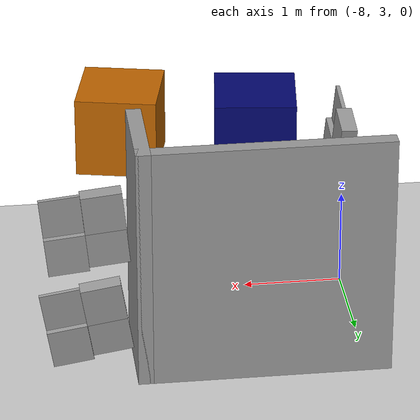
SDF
<sdf version="1.7">
 <world name="default">
  <model name="demo_clean">
   <static>1</static>
   <link name="Wall_6">
    <collision name="Wall_6_Collision">
     <geometry><box><size>2.5 0.15 2.5</size></box></geometry>
     <pose>0 0 1.25 0 -0 0</pose>
     <surface>
      <friction>
       <ode><mu>1</mu><mu2>1</mu2><fdir1>0 0 0</fdir1><slip1>0</slip1><slip2>0</slip2></ode>
       <torsional>
        <coefficient>1</coefficient>
        <patch_radius>0</patch_radius>
        <surface_radius>0</surface_radius>
        <use_patch_radius>1</use_patch_radius>
        <ode><slip>0</slip></ode>
       </torsional>
      </friction>
      <bounce><restitution_coefficient>0</restitution_coefficient><threshold>1e+06</threshold></bounce>
      <contact>
       <collide_without_contact>0</collide_without_contact>
       <collide_without_contact_bitmask>1</collide_without_contact_bitmask>
       <collide_bitmask>1</collide_bitmask>
       <ode>
        <soft_cfm>0</soft_cfm>
        <soft_erp>0.2</soft_erp>
        <kp>1e+13</kp>
        <kd>1</kd>
        <max_vel>0.01</max_vel>
        <min_depth>0</min_depth>
       </ode>
       <bullet>
        <split_impulse>1</split_impulse>
        <split_impulse_penetration_threshold>-0.01</split_impulse_penetration_threshold>
        <soft_cfm>0</soft_cfm>
        <soft_erp>0.2</soft_erp>
        <kp>1e+13</kp>
        <kd>1</kd>
       </bullet>
      </contact>
     </surface>
    </collision>
    <visual name="Wall_6_Visual">
     <geometry><box><size>2.5 0.15 2.5</size></box></geometry>
     <material>
      <script><name>Gazebo/Grey</name><uri>file://media/materials/scripts/gazebo.material</uri></script>
      <ambient>1 1 1 1</ambient>
      <shader type="pixel"><normal_map>default</normal_map></shader>
     </material>
     <pose>0 0 1.25 0 -0 0</pose>
    </visual>
    <pose>-6.97149 4.74118 0 0 -0 0</pose>
   </link>
   <link name="Wall_7">
    <collision name="Wall_7_Collision">
     <geometry><box><size>1 0.15 2.5</size></box></geometry>
     <pose>0 0 1.25 0 -0 0</pose>
     <surface>
      <friction>
       <ode><mu>1</mu><mu2>1</mu2><fdir1>0 0 0</fdir1><slip1>0</slip1><slip2>0</slip2></ode>
       <torsional>
        <coefficient>1</coefficient>
        <patch_radius>0</patch_radius>
        <surface_radius>0</surface_radius>
        <use_patch_radius>1</use_patch_radius>
        <ode><slip>0</slip></ode>
       </torsional>
      </friction>
      <bounce><restitution_coefficient>0</restitution_coefficient><threshold>1e+06</threshold></bounce>
      <contact>
       <collide_without_contact>0</collide_without_contact>
       <collide_without_contact_bitmask>1</collide_without_contact_bitmask>
       <collide_bitmask>1</collide_bitmask>
       <ode>
        <soft_cfm>0</soft_cfm>
        <soft_erp>0.2</soft_erp>
        <kp>1e+13</kp>
        <kd>1</kd>
        <max_vel>0.01</max_vel>
        <min_depth>0</min_depth>
       </ode>
       <bullet>
        <split_impulse>1</split_impulse>
        <split_impulse_penetration_threshold>-0.01</split_impulse_penetration_threshold>
        <soft_cfm>0</soft_cfm>
        <soft_erp>0.2</soft_erp>
        <kp>1e+13</kp>
        <kd>1</kd>
       </bullet>
      </contact>
     </surface>
    </collision>
    <visual name="Wall_7_Visual">
     <geometry><box><size>1 0.15 2.5</size></box></geometry>
     <material>
      <script><name>Gazebo/Grey</name><uri>file://media/materials/scripts/gazebo.material</uri></script>
      <ambient>1 1 1 1</ambient>
      <shader type="pixel"><normal_map>default</normal_map></shader>
     </material>
     <pose>0 0 1.25 0 -0 0</pose>
    </visual>
    <pose>-5.79649 4.31618 0 0 0 -1.5708</pose>
   </link>
  </model>
  <model name="dyn_box_4">
   <pose>-7.05039 3.33487 2 0 -0 3.02665</pose>
   <static>1</static>
   <allow_auto_disable>0</allow_auto_disable>
   <link name="link">
    <collision name="collision">
     <geometry><box><size>0.8 0.8 0.8</size></box></geometry>
     <max_contacts>20</max_contacts>
    </collision>
    <visual name="visual">
     <geometry><box><size>0.8 0.8 0.8</size></box></geometry>
     <material>
      <ambient>0.00784314 0.0235294 0.435294 1</ambient>
      <diffuse>0.00784314 0.0235294 0.435294 1</diffuse>
     </material>
    </visual>
   </link>
  </model>
  <model name="dyn_box_7">
   <pose>-5.73642 3.07449 2 0 -0 2.92783</pose>
   <static>1</static>
   <allow_auto_disable>0</allow_auto_disable>
   <link name="link">
    <collision name="collision">
     <geometry><box><size>0.8 0.8 0.8</size></box></geometry>
     <max_contacts>20</max_contacts>
    </collision>
    <visual name="visual">
     <geometry><box><size>0.8 0.8 0.8</size></box></geometry>
     <material><ambient>0.745098 0.392157 0 1</ambient><diffuse>0.745098 0.392157 0 1</diffuse></material>
    </visual>
   </link>
  </model>
  <model name="ground_plane">
   <static>1</static>
   <link name="link">
    <collision name="collision">
     <geometry><plane><normal>0 0 1</normal><size>100 100</size></plane></geometry>
     <surface>
      <contact><collide_bitmask>65535</collide_bitmask></contact>
      <friction><ode><mu>100</mu><mu2>50</mu2></ode></friction>
     </surface>
    </collision>
    <visual name="visual">
     <cast_shadows>0</cast_shadows>
     <geometry><plane><normal>0 0 1</normal><size>100 100</size></plane></geometry>
     <material>
      <script><uri>file://media/materials/scripts/gazebo.material</uri><name>Gazebo/Grey</name></script>
     </material>
    </visual>
   </link>
  </model>
  <model name="wall_slate_22">
   <static>1</static>
   <link name="link_0">
    <inertial><mass>1</mass></inertial>
    <gravity>0</gravity>
    <visual name="visual">
     <pose>0 0.2 0.2 0 -0 0</pose>
     <geometry><box><size>0.16 0.4 0.4</size></box></geometry>
     <material>
      <lighting>1</lighting>
      <script><uri>file://media/materials/scripts/gazebo.material</uri><name>Gazebo/Grey</name></script>
      <shader type="pixel"><normal_map>__default__</normal_map></shader>
      <ambient>0.3 0.3 0.3 1</ambient>
      <diffuse>0.7 0.7 0.7 1</diffuse>
      <specular>0.01 0.01 0.01 1</specular>
      <emissive>0 0 0 1</emissive>
     </material>
    </visual>
    <visual name="ModelPreview_0::link_0::visual_1">
     <pose>0 0.2 -0.2 0 -0 0</pose>
     <geometry><box><size>0.04 0.4 0.4</size></box></geometry>
     <material>
      <lighting>1</lighting>
      <script><uri>file://media/materials/scripts/gazebo.material</uri><name>Gazebo/Grey</name></script>
      <shader type="pixel"><normal_map>__default__</normal_map></shader>
      <ambient>0.3 0.3 0.3 1</ambient>
      <diffuse>0.7 0.7 0.7 1</diffuse>
      <specular>0.01 0.01 0.01 1</specular>
      <emissive>0 0 0 1</emissive>
     </material>
    </visual>
    <visual name="ModelPreview_0::link_0::visual_2">
     <pose>0 -0.2 0.2 0 -0 0</pose>
     <geometry><box><size>0.04 0.4 0.4</size></box></geometry>
     <material>
      <lighting>1</lighting>
      <script><uri>file://media/materials/scripts/gazebo.material</uri><name>Gazebo/Grey</name></script>
      <shader type="pixel"><normal_map>__default__</normal_map></shader>
      <ambient>0.3 0.3 0.3 1</ambient>
      <diffuse>0.7 0.7 0.7 1</diffuse>
      <specular>0.01 0.01 0.01 1</specular>
      <emissive>0 0 0 1</emissive>
     </material>
    </visual>
    <visual name="ModelPreview_0::link_0::visual_3">
     <pose>0 -0.2 -0.2 0 -0 0</pose>
     <geometry><box><size>0.16 0.4 0.4</size></box></geometry>
     <material>
      <lighting>1</lighting>
      <script><uri>file://media/materials/scripts/gazebo.material</uri><name>Gazebo/Grey</name></script>
      <shader type="pixel"><normal_map>__default__</normal_map></shader>
      <ambient>0.3 0.3 0.3 1</ambient>
      <diffuse>0.7 0.7 0.7 1</diffuse>
      <specular>0.01 0.01 0.01 1</specular>
      <emissive>0 0 0 1</emissive>
     </material>
    </visual>
    <collision name="collision_2">
     <pose>0 -0.2 0.2 0 -0 0</pose>
     <geometry><box><size>0.04 0.4 0.4</size></box></geometry>
     <surface>
      <friction>
       <ode><mu>1</mu><mu2>1</mu2><fdir1>0 0 0</fdir1><slip1>0</slip1><slip2>0</slip2></ode>
       <torsional>
        <coefficient>1</coefficient>
        <patch_radius>0</patch_radius>
        <surface_radius>0</surface_radius>
        <use_patch_radius>1</use_patch_radius>
        <ode><slip>0</slip></ode>
       </torsional>
      </friction>
      <bounce><restitution_coefficient>0</restitution_coefficient><threshold>1e+06</threshold></bounce>
      <contact>
       <collide_without_contact>0</collide_without_contact>
       <collide_without_contact_bitmask>1</collide_without_contact_bitmask>
       <collide_bitmask>1</collide_bitmask>
       <ode>
        <soft_cfm>0</soft_cfm>
        <soft_erp>0.2</soft_erp>
        <kp>1e+13</kp>
        <kd>1</kd>
        <max_vel>0.01</max_vel>
        <min_depth>0</min_depth>
       </ode>
       <bullet>
        <split_impulse>1</split_impulse>
        <split_impulse_penetration_threshold>-0.01</split_impulse_penetration_threshold>
        <soft_cfm>0</soft_cfm>
        <soft_erp>0.2</soft_erp>
        <kp>1e+13</kp>
        <kd>1</kd>
       </bullet>
      </contact>
     </surface>
    </collision>
    <collision name="collision_1">
     <pose>0 0.2 -0.2 0 -0 0</pose>
     <geometry><box><size>0.04 0.4 0.4</size></box></geometry>
     <surface>
      <friction>
       <ode><mu>1</mu><mu2>1</mu2><fdir1>0 0 0</fdir1><slip1>0</slip1><slip2>0</slip2></ode>
       <torsional>
        <coefficient>1</coefficient>
        <patch_radius>0</patch_radius>
        <surface_radius>0</surface_radius>
        <use_patch_radius>1</use_patch_radius>
        <ode><slip>0</slip></ode>
       </torsional>
      </friction>
      <bounce><restitution_coefficient>0</restitution_coefficient><threshold>1e+06</threshold></bounce>
      <contact>
       <collide_without_contact>0</collide_without_contact>
       <collide_without_contact_bitmask>1</collide_without_contact_bitmask>
       <collide_bitmask>1</collide_bitmask>
       <ode>
        <soft_cfm>0</soft_cfm>
        <soft_erp>0.2</soft_erp>
        <kp>1e+13</kp>
        <kd>1</kd>
        <max_vel>0.01</max_vel>
        <min_depth>0</min_depth>
       </ode>
       <bullet>
        <split_impulse>1</split_impulse>
        <split_impulse_penetration_threshold>-0.01</split_impulse_penetration_threshold>
        <soft_cfm>0</soft_cfm>
        <soft_erp>0.2</soft_erp>
        <kp>1e+13</kp>
        <kd>1</kd>
       </bullet>
      </contact>
     </surface>
    </collision>
    <collision name="collision_4">
     <pose>0 0.2 0.2 0 -0 0</pose>
     <geometry><box><size>0.16 0.4 0.4</size></box></geometry>
     <surface>
      <friction>
       <ode><mu>1</mu><mu2>1</mu2><fdir1>0 0 0</fdir1><slip1>0</slip1><slip2>0</slip2></ode>
       <torsional>
        <coefficient>1</coefficient>
        <patch_radius>0</patch_radius>
        <surface_radius>0</surface_radius>
        <use_patch_radius>1</use_patch_radius>
        <ode><slip>0</slip></ode>
       </torsional>
      </friction>
      <bounce><restitution_coefficient>0</restitution_coefficient><threshold>1e+06</threshold></bounce>
      <contact>
       <collide_without_contact>0</collide_without_contact>
       <collide_without_contact_bitmask>1</collide_without_contact_bitmask>
       <collide_bitmask>1</collide_bitmask>
       <ode>
        <soft_cfm>0</soft_cfm>
        <soft_erp>0.2</soft_erp>
        <kp>1e+13</kp>
        <kd>1</kd>
        <max_vel>0.01</max_vel>
        <min_depth>0</min_depth>
       </ode>
       <bullet>
        <split_impulse>1</split_impulse>
        <split_impulse_penetration_threshold>-0.01</split_impulse_penetration_threshold>
        <soft_cfm>0</soft_cfm>
        <soft_erp>0.2</soft_erp>
        <kp>1e+13</kp>
        <kd>1</kd>
       </bullet>
      </contact>
     </surface>
    </collision>
    <collision name="collision_3">
     <pose>0 -0.2 -0.2 0 -0 0</pose>
     <geometry><box><size>0.16 0.4 0.4</size></box></geometry>
     <surface>
      <friction>
       <ode><mu>1</mu><mu2>1</mu2><fdir1>0 0 0</fdir1><slip1>0</slip1><slip2>0</slip2></ode>
       <torsional>
        <coefficient>1</coefficient>
        <patch_radius>0</patch_radius>
        <surface_radius>0</surface_radius>
        <use_patch_radius>1</use_patch_radius>
        <ode><slip>0</slip></ode>
       </torsional>
      </friction>
      <bounce><restitution_coefficient>0</restitution_coefficient><threshold>1e+06</threshold></bounce>
      <contact>
       <collide_without_contact>0</collide_without_contact>
       <collide_without_contact_bitmask>1</collide_without_contact_bitmask>
       <collide_bitmask>1</collide_bitmask>
       <ode>
        <soft_cfm>0</soft_cfm>
        <soft_erp>0.2</soft_erp>
        <kp>1e+13</kp>
        <kd>1</kd>
        <max_vel>0.01</max_vel>
        <min_depth>0</min_depth>
       </ode>
       <bullet>
        <split_impulse>1</split_impulse>
        <split_impulse_penetration_threshold>-0.01</split_impulse_penetration_threshold>
        <soft_cfm>0</soft_cfm>
        <soft_erp>0.2</soft_erp>
        <kp>1e+13</kp>
        <kd>1</kd>
       </bullet>
      </contact>
     </surface>
    </collision>
   </link>
   <pose>-7.57149 4.56618 1.6 -0.16 0.08 1.5757</pose>
  </model>
  <model name="wall_slate_28">
   <static>1</static>
   <link name="link_0">
    <inertial><mass>1</mass></inertial>
    <gravity>0</gravity>
    <visual name="visual">
     <pose>0 0.2 0.2 0 -0 0</pose>
     <geometry><box><size>0.16 0.4 0.4</size></box></geometry>
     <material>
      <lighting>1</lighting>
      <script><uri>file://media/materials/scripts/gazebo.material</uri><name>Gazebo/Grey</name></script>
      <shader type="pixel"><normal_map>__default__</normal_map></shader>
      <ambient>0.3 0.3 0.3 1</ambient>
      <diffuse>0.7 0.7 0.7 1</diffuse>
      <specular>0.01 0.01 0.01 1</specular>
      <emissive>0 0 0 1</emissive>
     </material>
    </visual>
    <visual name="ModelPreview_0::link_0::visual_1">
     <pose>0 0.2 -0.2 0 -0 0</pose>
     <geometry><box><size>0.04 0.4 0.4</size></box></geometry>
     <material>
      <lighting>1</lighting>
      <script><uri>file://media/materials/scripts/gazebo.material</uri><name>Gazebo/Grey</name></script>
      <shader type="pixel"><normal_map>__default__</normal_map></shader>
      <ambient>0.3 0.3 0.3 1</ambient>
      <diffuse>0.7 0.7 0.7 1</diffuse>
      <specular>0.01 0.01 0.01 1</specular>
      <emissive>0 0 0 1</emissive>
     </material>
    </visual>
    <visual name="ModelPreview_0::link_0::visual_2">
     <pose>0 -0.2 0.2 0 -0 0</pose>
     <geometry><box><size>0.04 0.4 0.4</size></box></geometry>
     <material>
      <lighting>1</lighting>
      <script><uri>file://media/materials/scripts/gazebo.material</uri><name>Gazebo/Grey</name></script>
      <shader type="pixel"><normal_map>__default__</normal_map></shader>
      <ambient>0.3 0.3 0.3 1</ambient>
      <diffuse>0.7 0.7 0.7 1</diffuse>
      <specular>0.01 0.01 0.01 1</specular>
      <emissive>0 0 0 1</emissive>
     </material>
    </visual>
    <visual name="ModelPreview_0::link_0::visual_3">
     <pose>0 -0.2 -0.2 0 -0 0</pose>
     <geometry><box><size>0.16 0.4 0.4</size></box></geometry>
     <material>
      <lighting>1</lighting>
      <script><uri>file://media/materials/scripts/gazebo.material</uri><name>Gazebo/Grey</name></script>
      <shader type="pixel"><normal_map>__default__</normal_map></shader>
      <ambient>0.3 0.3 0.3 1</ambient>
      <diffuse>0.7 0.7 0.7 1</diffuse>
      <specular>0.01 0.01 0.01 1</specular>
      <emissive>0 0 0 1</emissive>
     </material>
    </visual>
    <collision name="collision_2">
     <pose>0 -0.2 0.2 0 -0 0</pose>
     <geometry><box><size>0.04 0.4 0.4</size></box></geometry>
     <surface>
      <friction>
       <ode><mu>1</mu><mu2>1</mu2><fdir1>0 0 0</fdir1><slip1>0</slip1><slip2>0</slip2></ode>
       <torsional>
        <coefficient>1</coefficient>
        <patch_radius>0</patch_radius>
        <surface_radius>0</surface_radius>
        <use_patch_radius>1</use_patch_radius>
        <ode><slip>0</slip></ode>
       </torsional>
      </friction>
      <bounce><restitution_coefficient>0</restitution_coefficient><threshold>1e+06</threshold></bounce>
      <contact>
       <collide_without_contact>0</collide_without_contact>
       <collide_without_contact_bitmask>1</collide_without_contact_bitmask>
       <collide_bitmask>1</collide_bitmask>
       <ode>
        <soft_cfm>0</soft_cfm>
        <soft_erp>0.2</soft_erp>
        <kp>1e+13</kp>
        <kd>1</kd>
        <max_vel>0.01</max_vel>
        <min_depth>0</min_depth>
       </ode>
       <bullet>
        <split_impulse>1</split_impulse>
        <split_impulse_penetration_threshold>-0.01</split_impulse_penetration_threshold>
        <soft_cfm>0</soft_cfm>
        <soft_erp>0.2</soft_erp>
        <kp>1e+13</kp>
        <kd>1</kd>
       </bullet>
      </contact>
     </surface>
    </collision>
    <collision name="collision_1">
     <pose>0 0.2 -0.2 0 -0 0</pose>
     <geometry><box><size>0.04 0.4 0.4</size></box></geometry>
     <surface>
      <friction>
       <ode><mu>1</mu><mu2>1</mu2><fdir1>0 0 0</fdir1><slip1>0</slip1><slip2>0</slip2></ode>
       <torsional>
        <coefficient>1</coefficient>
        <patch_radius>0</patch_radius>
        <surface_radius>0</surface_radius>
        <use_patch_radius>1</use_patch_radius>
        <ode><slip>0</slip></ode>
       </torsional>
      </friction>
      <bounce><restitution_coefficient>0</restitution_coefficient><threshold>1e+06</threshold></bounce>
      <contact>
       <collide_without_contact>0</collide_without_contact>
       <collide_without_contact_bitmask>1</collide_without_contact_bitmask>
       <collide_bitmask>1</collide_bitmask>
       <ode>
        <soft_cfm>0</soft_cfm>
        <soft_erp>0.2</soft_erp>
        <kp>1e+13</kp>
        <kd>1</kd>
        <max_vel>0.01</max_vel>
        <min_depth>0</min_depth>
       </ode>
       <bullet>
        <split_impulse>1</split_impulse>
        <split_impulse_penetration_threshold>-0.01</split_impulse_penetration_threshold>
        <soft_cfm>0</soft_cfm>
        <soft_erp>0.2</soft_erp>
        <kp>1e+13</kp>
        <kd>1</kd>
       </bullet>
      </contact>
     </surface>
    </collision>
    <collision name="collision_4">
     <pose>0 0.2 0.2 0 -0 0</pose>
     <geometry><box><size>0.16 0.4 0.4</size></box></geometry>
     <surface>
      <friction>
       <ode><mu>1</mu><mu2>1</mu2><fdir1>0 0 0</fdir1><slip1>0</slip1><slip2>0</slip2></ode>
       <torsional>
        <coefficient>1</coefficient>
        <patch_radius>0</patch_radius>
        <surface_radius>0</surface_radius>
        <use_patch_radius>1</use_patch_radius>
        <ode><slip>0</slip></ode>
       </torsional>
      </friction>
      <bounce><restitution_coefficient>0</restitution_coefficient><threshold>1e+06</threshold></bounce>
      <contact>
       <collide_without_contact>0</collide_without_contact>
       <collide_without_contact_bitmask>1</collide_without_contact_bitmask>
       <collide_bitmask>1</collide_bitmask>
       <ode>
        <soft_cfm>0</soft_cfm>
        <soft_erp>0.2</soft_erp>
        <kp>1e+13</kp>
        <kd>1</kd>
        <max_vel>0.01</max_vel>
        <min_depth>0</min_depth>
       </ode>
       <bullet>
        <split_impulse>1</split_impulse>
        <split_impulse_penetration_threshold>-0.01</split_impulse_penetration_threshold>
        <soft_cfm>0</soft_cfm>
        <soft_erp>0.2</soft_erp>
        <kp>1e+13</kp>
        <kd>1</kd>
       </bullet>
      </contact>
     </surface>
    </collision>
    <collision name="collision_3">
     <pose>0 -0.2 -0.2 0 -0 0</pose>
     <geometry><box><size>0.16 0.4 0.4</size></box></geometry>
     <surface>
      <friction>
       <ode><mu>1</mu><mu2>1</mu2><fdir1>0 0 0</fdir1><slip1>0</slip1><slip2>0</slip2></ode>
       <torsional>
        <coefficient>1</coefficient>
        <patch_radius>0</patch_radius>
        <surface_radius>0</surface_radius>
        <use_patch_radius>1</use_patch_radius>
        <ode><slip>0</slip></ode>
       </torsional>
      </friction>
      <bounce><restitution_coefficient>0</restitution_coefficient><threshold>1e+06</threshold></bounce>
      <contact>
       <collide_without_contact>0</collide_without_contact>
       <collide_without_contact_bitmask>1</collide_without_contact_bitmask>
       <collide_bitmask>1</collide_bitmask>
       <ode>
        <soft_cfm>0</soft_cfm>
        <soft_erp>0.2</soft_erp>
        <kp>1e+13</kp>
        <kd>1</kd>
        <max_vel>0.01</max_vel>
        <min_depth>0</min_depth>
       </ode>
       <bullet>
        <split_impulse>1</split_impulse>
        <split_impulse_penetration_threshold>-0.01</split_impulse_penetration_threshold>
        <soft_cfm>0</soft_cfm>
        <soft_erp>0.2</soft_erp>
        <kp>1e+13</kp>
        <kd>1</kd>
       </bullet>
      </contact>
     </surface>
    </collision>
   </link>
   <pose>-5.24649 4.56618 0.6 0.16 0.08 1.5757</pose>
  </model>
  <model name="wall_slate_31">
   <static>1</static>
   <link name="link_0">
    <inertial><mass>1</mass></inertial>
    <gravity>0</gravity>
    <visual name="visual">
     <pose>0 0.2 0.2 0 -0 0</pose>
     <geometry><box><size>0.16 0.4 0.4</size></box></geometry>
     <material>
      <lighting>1</lighting>
      <script><uri>file://media/materials/scripts/gazebo.material</uri><name>Gazebo/Grey</name></script>
      <shader type="pixel"><normal_map>__default__</normal_map></shader>
      <ambient>0.3 0.3 0.3 1</ambient>
      <diffuse>0.7 0.7 0.7 1</diffuse>
      <specular>0.01 0.01 0.01 1</specular>
      <emissive>0 0 0 1</emissive>
     </material>
    </visual>
    <visual name="ModelPreview_0::link_0::visual_1">
     <pose>0 0.2 -0.2 0 -0 0</pose>
     <geometry><box><size>0.04 0.4 0.4</size></box></geometry>
     <material>
      <lighting>1</lighting>
      <script><uri>file://media/materials/scripts/gazebo.material</uri><name>Gazebo/Grey</name></script>
      <shader type="pixel"><normal_map>__default__</normal_map></shader>
      <ambient>0.3 0.3 0.3 1</ambient>
      <diffuse>0.7 0.7 0.7 1</diffuse>
      <specular>0.01 0.01 0.01 1</specular>
      <emissive>0 0 0 1</emissive>
     </material>
    </visual>
    <visual name="ModelPreview_0::link_0::visual_2">
     <pose>0 -0.2 0.2 0 -0 0</pose>
     <geometry><box><size>0.04 0.4 0.4</size></box></geometry>
     <material>
      <lighting>1</lighting>
      <script><uri>file://media/materials/scripts/gazebo.material</uri><name>Gazebo/Grey</name></script>
      <shader type="pixel"><normal_map>__default__</normal_map></shader>
      <ambient>0.3 0.3 0.3 1</ambient>
      <diffuse>0.7 0.7 0.7 1</diffuse>
      <specular>0.01 0.01 0.01 1</specular>
      <emissive>0 0 0 1</emissive>
     </material>
    </visual>
    <visual name="ModelPreview_0::link_0::visual_3">
     <pose>0 -0.2 -0.2 0 -0 0</pose>
     <geometry><box><size>0.16 0.4 0.4</size></box></geometry>
     <material>
      <lighting>1</lighting>
      <script><uri>file://media/materials/scripts/gazebo.material</uri><name>Gazebo/Grey</name></script>
      <shader type="pixel"><normal_map>__default__</normal_map></shader>
      <ambient>0.3 0.3 0.3 1</ambient>
      <diffuse>0.7 0.7 0.7 1</diffuse>
      <specular>0.01 0.01 0.01 1</specular>
      <emissive>0 0 0 1</emissive>
     </material>
    </visual>
    <collision name="collision_2">
     <pose>0 -0.2 0.2 0 -0 0</pose>
     <geometry><box><size>0.04 0.4 0.4</size></box></geometry>
     <surface>
      <friction>
       <ode><mu>1</mu><mu2>1</mu2><fdir1>0 0 0</fdir1><slip1>0</slip1><slip2>0</slip2></ode>
       <torsional>
        <coefficient>1</coefficient>
        <patch_radius>0</patch_radius>
        <surface_radius>0</surface_radius>
        <use_patch_radius>1</use_patch_radius>
        <ode><slip>0</slip></ode>
       </torsional>
      </friction>
      <bounce><restitution_coefficient>0</restitution_coefficient><threshold>1e+06</threshold></bounce>
      <contact>
       <collide_without_contact>0</collide_without_contact>
       <collide_without_contact_bitmask>1</collide_without_contact_bitmask>
       <collide_bitmask>1</collide_bitmask>
       <ode>
        <soft_cfm>0</soft_cfm>
        <soft_erp>0.2</soft_erp>
        <kp>1e+13</kp>
        <kd>1</kd>
        <max_vel>0.01</max_vel>
        <min_depth>0</min_depth>
       </ode>
       <bullet>
        <split_impulse>1</split_impulse>
        <split_impulse_penetration_threshold>-0.01</split_impulse_penetration_threshold>
        <soft_cfm>0</soft_cfm>
        <soft_erp>0.2</soft_erp>
        <kp>1e+13</kp>
        <kd>1</kd>
       </bullet>
      </contact>
     </surface>
    </collision>
    <collision name="collision_1">
     <pose>0 0.2 -0.2 0 -0 0</pose>
     <geometry><box><size>0.04 0.4 0.4</size></box></geometry>
     <surface>
      <friction>
       <ode><mu>1</mu><mu2>1</mu2><fdir1>0 0 0</fdir1><slip1>0</slip1><slip2>0</slip2></ode>
       <torsional>
        <coefficient>1</coefficient>
        <patch_radius>0</patch_radius>
        <surface_radius>0</surface_radius>
        <use_patch_radius>1</use_patch_radius>
        <ode><slip>0</slip></ode>
       </torsional>
      </friction>
      <bounce><restitution_coefficient>0</restitution_coefficient><threshold>1e+06</threshold></bounce>
      <contact>
       <collide_without_contact>0</collide_without_contact>
       <collide_without_contact_bitmask>1</collide_without_contact_bitmask>
       <collide_bitmask>1</collide_bitmask>
       <ode>
        <soft_cfm>0</soft_cfm>
        <soft_erp>0.2</soft_erp>
        <kp>1e+13</kp>
        <kd>1</kd>
        <max_vel>0.01</max_vel>
        <min_depth>0</min_depth>
       </ode>
       <bullet>
        <split_impulse>1</split_impulse>
        <split_impulse_penetration_threshold>-0.01</split_impulse_penetration_threshold>
        <soft_cfm>0</soft_cfm>
        <soft_erp>0.2</soft_erp>
        <kp>1e+13</kp>
        <kd>1</kd>
       </bullet>
      </contact>
     </surface>
    </collision>
    <collision name="collision_4">
     <pose>0 0.2 0.2 0 -0 0</pose>
     <geometry><box><size>0.16 0.4 0.4</size></box></geometry>
     <surface>
      <friction>
       <ode><mu>1</mu><mu2>1</mu2><fdir1>0 0 0</fdir1><slip1>0</slip1><slip2>0</slip2></ode>
       <torsional>
        <coefficient>1</coefficient>
        <patch_radius>0</patch_radius>
        <surface_radius>0</surface_radius>
        <use_patch_radius>1</use_patch_radius>
        <ode><slip>0</slip></ode>
       </torsional>
      </friction>
      <bounce><restitution_coefficient>0</restitution_coefficient><threshold>1e+06</threshold></bounce>
      <contact>
       <collide_without_contact>0</collide_without_contact>
       <collide_without_contact_bitmask>1</collide_without_contact_bitmask>
       <collide_bitmask>1</collide_bitmask>
       <ode>
        <soft_cfm>0</soft_cfm>
        <soft_erp>0.2</soft_erp>
        <kp>1e+13</kp>
        <kd>1</kd>
        <max_vel>0.01</max_vel>
        <min_depth>0</min_depth>
       </ode>
       <bullet>
        <split_impulse>1</split_impulse>
        <split_impulse_penetration_threshold>-0.01</split_impulse_penetration_threshold>
        <soft_cfm>0</soft_cfm>
        <soft_erp>0.2</soft_erp>
        <kp>1e+13</kp>
        <kd>1</kd>
       </bullet>
      </contact>
     </surface>
    </collision>
    <collision name="collision_3">
     <pose>0 -0.2 -0.2 0 -0 0</pose>
     <geometry><box><size>0.16 0.4 0.4</size></box></geometry>
     <surface>
      <friction>
       <ode><mu>1</mu><mu2>1</mu2><fdir1>0 0 0</fdir1><slip1>0</slip1><slip2>0</slip2></ode>
       <torsional>
        <coefficient>1</coefficient>
        <patch_radius>0</patch_radius>
        <surface_radius>0</surface_radius>
        <use_patch_radius>1</use_patch_radius>
        <ode><slip>0</slip></ode>
       </torsional>
      </friction>
      <bounce><restitution_coefficient>0</restitution_coefficient><threshold>1e+06</threshold></bounce>
      <contact>
       <collide_without_contact>0</collide_without_contact>
       <collide_without_contact_bitmask>1</collide_without_contact_bitmask>
       <collide_bitmask>1</collide_bitmask>
       <ode>
        <soft_cfm>0</soft_cfm>
        <soft_erp>0.2</soft_erp>
        <kp>1e+13</kp>
        <kd>1</kd>
        <max_vel>0.01</max_vel>
        <min_depth>0</min_depth>
       </ode>
       <bullet>
        <split_impulse>1</split_impulse>
        <split_impulse_penetration_threshold>-0.01</split_impulse_penetration_threshold>
        <soft_cfm>0</soft_cfm>
        <soft_erp>0.2</soft_erp>
        <kp>1e+13</kp>
        <kd>1</kd>
       </bullet>
      </contact>
     </surface>
    </collision>
   </link>
   <pose>-7.57149 4.56618 0.6 -0.2 0.08 1.5757</pose>
  </model>
  <model name="wall_slate_75">
   <static>1</static>
   <link name="link_0">
    <inertial><mass>1</mass></inertial>
    <gravity>0</gravity>
    <visual name="visual">
     <pose>0 0.2 0.2 0 -0 0</pose>
     <geometry><box><size>0.16 0.4 0.4</size></box></geometry>
     <material>
      <lighting>1</lighting>
      <script><uri>file://media/materials/scripts/gazebo.material</uri><name>Gazebo/Grey</name></script>
      <shader type="pixel"><normal_map>__default__</normal_map></shader>
      <ambient>0.3 0.3 0.3 1</ambient>
      <diffuse>0.7 0.7 0.7 1</diffuse>
      <specular>0.01 0.01 0.01 1</specular>
      <emissive>0 0 0 1</emissive>
     </material>
    </visual>
    <visual name="ModelPreview_0::link_0::visual_1">
     <pose>0 0.2 -0.2 0 -0 0</pose>
     <geometry><box><size>0.04 0.4 0.4</size></box></geometry>
     <material>
      <lighting>1</lighting>
      <script><uri>file://media/materials/scripts/gazebo.material</uri><name>Gazebo/Grey</name></script>
      <shader type="pixel"><normal_map>__default__</normal_map></shader>
      <ambient>0.3 0.3 0.3 1</ambient>
      <diffuse>0.7 0.7 0.7 1</diffuse>
      <specular>0.01 0.01 0.01 1</specular>
      <emissive>0 0 0 1</emissive>
     </material>
    </visual>
    <visual name="ModelPreview_0::link_0::visual_2">
     <pose>0 -0.2 0.2 0 -0 0</pose>
     <geometry><box><size>0.04 0.4 0.4</size></box></geometry>
     <material>
      <lighting>1</lighting>
      <script><uri>file://media/materials/scripts/gazebo.material</uri><name>Gazebo/Grey</name></script>
      <shader type="pixel"><normal_map>__default__</normal_map></shader>
      <ambient>0.3 0.3 0.3 1</ambient>
      <diffuse>0.7 0.7 0.7 1</diffuse>
      <specular>0.01 0.01 0.01 1</specular>
      <emissive>0 0 0 1</emissive>
     </material>
    </visual>
    <visual name="ModelPreview_0::link_0::visual_3">
     <pose>0 -0.2 -0.2 0 -0 0</pose>
     <geometry><box><size>0.16 0.4 0.4</size></box></geometry>
     <material>
      <lighting>1</lighting>
      <script><uri>file://media/materials/scripts/gazebo.material</uri><name>Gazebo/Grey</name></script>
      <shader type="pixel"><normal_map>__default__</normal_map></shader>
      <ambient>0.3 0.3 0.3 1</ambient>
      <diffuse>0.7 0.7 0.7 1</diffuse>
      <specular>0.01 0.01 0.01 1</specular>
      <emissive>0 0 0 1</emissive>
     </material>
    </visual>
    <collision name="collision_2">
     <pose>0 -0.2 0.2 0 -0 0</pose>
     <geometry><box><size>0.04 0.4 0.4</size></box></geometry>
     <surface>
      <friction>
       <ode><mu>1</mu><mu2>1</mu2><fdir1>0 0 0</fdir1><slip1>0</slip1><slip2>0</slip2></ode>
       <torsional>
        <coefficient>1</coefficient>
        <patch_radius>0</patch_radius>
        <surface_radius>0</surface_radius>
        <use_patch_radius>1</use_patch_radius>
        <ode><slip>0</slip></ode>
       </torsional>
      </friction>
      <bounce><restitution_coefficient>0</restitution_coefficient><threshold>1e+06</threshold></bounce>
      <contact>
       <collide_without_contact>0</collide_without_contact>
       <collide_without_contact_bitmask>1</collide_without_contact_bitmask>
       <collide_bitmask>1</collide_bitmask>
       <ode>
        <soft_cfm>0</soft_cfm>
        <soft_erp>0.2</soft_erp>
        <kp>1e+13</kp>
        <kd>1</kd>
        <max_vel>0.01</max_vel>
        <min_depth>0</min_depth>
       </ode>
       <bullet>
        <split_impulse>1</split_impulse>
        <split_impulse_penetration_threshold>-0.01</split_impulse_penetration_threshold>
        <soft_cfm>0</soft_cfm>
        <soft_erp>0.2</soft_erp>
        <kp>1e+13</kp>
        <kd>1</kd>
       </bullet>
      </contact>
     </surface>
    </collision>
    <collision name="collision_1">
     <pose>0 0.2 -0.2 0 -0 0</pose>
     <geometry><box><size>0.04 0.4 0.4</size></box></geometry>
     <surface>
      <friction>
       <ode><mu>1</mu><mu2>1</mu2><fdir1>0 0 0</fdir1><slip1>0</slip1><slip2>0</slip2></ode>
       <torsional>
        <coefficient>1</coefficient>
        <patch_radius>0</patch_radius>
        <surface_radius>0</surface_radius>
        <use_patch_radius>1</use_patch_radius>
        <ode><slip>0</slip></ode>
       </torsional>
      </friction>
      <bounce><restitution_coefficient>0</restitution_coefficient><threshold>1e+06</threshold></bounce>
      <contact>
       <collide_without_contact>0</collide_without_contact>
       <collide_without_contact_bitmask>1</collide_without_contact_bitmask>
       <collide_bitmask>1</collide_bitmask>
       <ode>
        <soft_cfm>0</soft_cfm>
        <soft_erp>0.2</soft_erp>
        <kp>1e+13</kp>
        <kd>1</kd>
        <max_vel>0.01</max_vel>
        <min_depth>0</min_depth>
       </ode>
       <bullet>
        <split_impulse>1</split_impulse>
        <split_impulse_penetration_threshold>-0.01</split_impulse_penetration_threshold>
        <soft_cfm>0</soft_cfm>
        <soft_erp>0.2</soft_erp>
        <kp>1e+13</kp>
        <kd>1</kd>
       </bullet>
      </contact>
     </surface>
    </collision>
    <collision name="collision_4">
     <pose>0 0.2 0.2 0 -0 0</pose>
     <geometry><box><size>0.16 0.4 0.4</size></box></geometry>
     <surface>
      <friction>
       <ode><mu>1</mu><mu2>1</mu2><fdir1>0 0 0</fdir1><slip1>0</slip1><slip2>0</slip2></ode>
       <torsional>
        <coefficient>1</coefficient>
        <patch_radius>0</patch_radius>
        <surface_radius>0</surface_radius>
        <use_patch_radius>1</use_patch_radius>
        <ode><slip>0</slip></ode>
       </torsional>
      </friction>
      <bounce><restitution_coefficient>0</restitution_coefficient><threshold>1e+06</threshold></bounce>
      <contact>
       <collide_without_contact>0</collide_without_contact>
       <collide_without_contact_bitmask>1</collide_without_contact_bitmask>
       <collide_bitmask>1</collide_bitmask>
       <ode>
        <soft_cfm>0</soft_cfm>
        <soft_erp>0.2</soft_erp>
        <kp>1e+13</kp>
        <kd>1</kd>
        <max_vel>0.01</max_vel>
        <min_depth>0</min_depth>
       </ode>
       <bullet>
        <split_impulse>1</split_impulse>
        <split_impulse_penetration_threshold>-0.01</split_impulse_penetration_threshold>
        <soft_cfm>0</soft_cfm>
        <soft_erp>0.2</soft_erp>
        <kp>1e+13</kp>
        <kd>1</kd>
       </bullet>
      </contact>
     </surface>
    </collision>
    <collision name="collision_3">
     <pose>0 -0.2 -0.2 0 -0 0</pose>
     <geometry><box><size>0.16 0.4 0.4</size></box></geometry>
     <surface>
      <friction>
       <ode><mu>1</mu><mu2>1</mu2><fdir1>0 0 0</fdir1><slip1>0</slip1><slip2>0</slip2></ode>
       <torsional>
        <coefficient>1</coefficient>
        <patch_radius>0</patch_radius>
        <surface_radius>0</surface_radius>
        <use_patch_radius>1</use_patch_radius>
        <ode><slip>0</slip></ode>
       </torsional>
      </friction>
      <bounce><restitution_coefficient>0</restitution_coefficient><threshold>1e+06</threshold></bounce>
      <contact>
       <collide_without_contact>0</collide_without_contact>
       <collide_without_contact_bitmask>1</collide_without_contact_bitmask>
       <collide_bitmask>1</collide_bitmask>
       <ode>
        <soft_cfm>0</soft_cfm>
        <soft_erp>0.2</soft_erp>
        <kp>1e+13</kp>
        <kd>1</kd>
        <max_vel>0.01</max_vel>
        <min_depth>0</min_depth>
       </ode>
       <bullet>
        <split_impulse>1</split_impulse>
        <split_impulse_penetration_threshold>-0.01</split_impulse_penetration_threshold>
        <soft_cfm>0</soft_cfm>
        <soft_erp>0.2</soft_erp>
        <kp>1e+13</kp>
        <kd>1</kd>
       </bullet>
      </contact>
     </surface>
    </collision>
   </link>
   <pose>-5.24649 4.56618 1.6 0.1 0.04 1.5757</pose>
  </model>
  <model name="wall_slate_78">
   <static>1</static>
   <link name="link_0">
    <inertial><mass>1</mass></inertial>
    <gravity>0</gravity>
    <visual name="visual">
     <pose>0 0.2 0.2 0 -0 0</pose>
     <geometry><box><size>0.16 0.4 0.4</size></box></geometry>
     <material>
      <lighting>1</lighting>
      <script><uri>file://media/materials/scripts/gazebo.material</uri><name>Gazebo/Grey</name></script>
      <shader type="pixel"><normal_map>__default__</normal_map></shader>
      <ambient>0.3 0.3 0.3 1</ambient>
      <diffuse>0.7 0.7 0.7 1</diffuse>
      <specular>0.01 0.01 0.01 1</specular>
      <emissive>0 0 0 1</emissive>
     </material>
    </visual>
    <visual name="ModelPreview_0::link_0::visual_1">
     <pose>0 0.2 -0.2 0 -0 0</pose>
     <geometry><box><size>0.04 0.4 0.4</size></box></geometry>
     <material>
      <lighting>1</lighting>
      <script><uri>file://media/materials/scripts/gazebo.material</uri><name>Gazebo/Grey</name></script>
      <shader type="pixel"><normal_map>__default__</normal_map></shader>
      <ambient>0.3 0.3 0.3 1</ambient>
      <diffuse>0.7 0.7 0.7 1</diffuse>
      <specular>0.01 0.01 0.01 1</specular>
      <emissive>0 0 0 1</emissive>
     </material>
    </visual>
    <visual name="ModelPreview_0::link_0::visual_2">
     <pose>0 -0.2 0.2 0 -0 0</pose>
     <geometry><box><size>0.04 0.4 0.4</size></box></geometry>
     <material>
      <lighting>1</lighting>
      <script><uri>file://media/materials/scripts/gazebo.material</uri><name>Gazebo/Grey</name></script>
      <shader type="pixel"><normal_map>__default__</normal_map></shader>
      <ambient>0.3 0.3 0.3 1</ambient>
      <diffuse>0.7 0.7 0.7 1</diffuse>
      <specular>0.01 0.01 0.01 1</specular>
      <emissive>0 0 0 1</emissive>
     </material>
    </visual>
    <visual name="ModelPreview_0::link_0::visual_3">
     <pose>0 -0.2 -0.2 0 -0 0</pose>
     <geometry><box><size>0.16 0.4 0.4</size></box></geometry>
     <material>
      <lighting>1</lighting>
      <script><uri>file://media/materials/scripts/gazebo.material</uri><name>Gazebo/Grey</name></script>
      <shader type="pixel"><normal_map>__default__</normal_map></shader>
      <ambient>0.3 0.3 0.3 1</ambient>
      <diffuse>0.7 0.7 0.7 1</diffuse>
      <specular>0.01 0.01 0.01 1</specular>
      <emissive>0 0 0 1</emissive>
     </material>
    </visual>
    <collision name="collision_2">
     <pose>0 -0.2 0.2 0 -0 0</pose>
     <geometry><box><size>0.04 0.4 0.4</size></box></geometry>
     <surface>
      <friction>
       <ode><mu>1</mu><mu2>1</mu2><fdir1>0 0 0</fdir1><slip1>0</slip1><slip2>0</slip2></ode>
       <torsional>
        <coefficient>1</coefficient>
        <patch_radius>0</patch_radius>
        <surface_radius>0</surface_radius>
        <use_patch_radius>1</use_patch_radius>
        <ode><slip>0</slip></ode>
       </torsional>
      </friction>
      <bounce><restitution_coefficient>0</restitution_coefficient><threshold>1e+06</threshold></bounce>
      <contact>
       <collide_without_contact>0</collide_without_contact>
       <collide_without_contact_bitmask>1</collide_without_contact_bitmask>
       <collide_bitmask>1</collide_bitmask>
       <ode>
        <soft_cfm>0</soft_cfm>
        <soft_erp>0.2</soft_erp>
        <kp>1e+13</kp>
        <kd>1</kd>
        <max_vel>0.01</max_vel>
        <min_depth>0</min_depth>
       </ode>
       <bullet>
        <split_impulse>1</split_impulse>
        <split_impulse_penetration_threshold>-0.01</split_impulse_penetration_threshold>
        <soft_cfm>0</soft_cfm>
        <soft_erp>0.2</soft_erp>
        <kp>1e+13</kp>
        <kd>1</kd>
       </bullet>
      </contact>
     </surface>
    </collision>
    <collision name="collision_1">
     <pose>0 0.2 -0.2 0 -0 0</pose>
     <geometry><box><size>0.04 0.4 0.4</size></box></geometry>
     <surface>
      <friction>
       <ode><mu>1</mu><mu2>1</mu2><fdir1>0 0 0</fdir1><slip1>0</slip1><slip2>0</slip2></ode>
       <torsional>
        <coefficient>1</coefficient>
        <patch_radius>0</patch_radius>
        <surface_radius>0</surface_radius>
        <use_patch_radius>1</use_patch_radius>
        <ode><slip>0</slip></ode>
       </torsional>
      </friction>
      <bounce><restitution_coefficient>0</restitution_coefficient><threshold>1e+06</threshold></bounce>
      <contact>
       <collide_without_contact>0</collide_without_contact>
       <collide_without_contact_bitmask>1</collide_without_contact_bitmask>
       <collide_bitmask>1</collide_bitmask>
       <ode>
        <soft_cfm>0</soft_cfm>
        <soft_erp>0.2</soft_erp>
        <kp>1e+13</kp>
        <kd>1</kd>
        <max_vel>0.01</max_vel>
        <min_depth>0</min_depth>
       </ode>
       <bullet>
        <split_impulse>1</split_impulse>
        <split_impulse_penetration_threshold>-0.01</split_impulse_penetration_threshold>
        <soft_cfm>0</soft_cfm>
        <soft_erp>0.2</soft_erp>
        <kp>1e+13</kp>
        <kd>1</kd>
       </bullet>
      </contact>
     </surface>
    </collision>
    <collision name="collision_4">
     <pose>0 0.2 0.2 0 -0 0</pose>
     <geometry><box><size>0.16 0.4 0.4</size></box></geometry>
     <surface>
      <friction>
       <ode><mu>1</mu><mu2>1</mu2><fdir1>0 0 0</fdir1><slip1>0</slip1><slip2>0</slip2></ode>
       <torsional>
        <coefficient>1</coefficient>
        <patch_radius>0</patch_radius>
        <surface_radius>0</surface_radius>
        <use_patch_radius>1</use_patch_radius>
        <ode><slip>0</slip></ode>
       </torsional>
      </friction>
      <bounce><restitution_coefficient>0</restitution_coefficient><threshold>1e+06</threshold></bounce>
      <contact>
       <collide_without_contact>0</collide_without_contact>
       <collide_without_contact_bitmask>1</collide_without_contact_bitmask>
       <collide_bitmask>1</collide_bitmask>
       <ode>
        <soft_cfm>0</soft_cfm>
        <soft_erp>0.2</soft_erp>
        <kp>1e+13</kp>
        <kd>1</kd>
        <max_vel>0.01</max_vel>
        <min_depth>0</min_depth>
       </ode>
       <bullet>
        <split_impulse>1</split_impulse>
        <split_impulse_penetration_threshold>-0.01</split_impulse_penetration_threshold>
        <soft_cfm>0</soft_cfm>
        <soft_erp>0.2</soft_erp>
        <kp>1e+13</kp>
        <kd>1</kd>
       </bullet>
      </contact>
     </surface>
    </collision>
    <collision name="collision_3">
     <pose>0 -0.2 -0.2 0 -0 0</pose>
     <geometry><box><size>0.16 0.4 0.4</size></box></geometry>
     <surface>
      <friction>
       <ode><mu>1</mu><mu2>1</mu2><fdir1>0 0 0</fdir1><slip1>0</slip1><slip2>0</slip2></ode>
       <torsional>
        <coefficient>1</coefficient>
        <patch_radius>0</patch_radius>
        <surface_radius>0</surface_radius>
        <use_patch_radius>1</use_patch_radius>
        <ode><slip>0</slip></ode>
       </torsional>
      </friction>
      <bounce><restitution_coefficient>0</restitution_coefficient><threshold>1e+06</threshold></bounce>
      <contact>
       <collide_without_contact>0</collide_without_contact>
       <collide_without_contact_bitmask>1</collide_without_contact_bitmask>
       <collide_bitmask>1</collide_bitmask>
       <ode>
        <soft_cfm>0</soft_cfm>
        <soft_erp>0.2</soft_erp>
        <kp>1e+13</kp>
        <kd>1</kd>
        <max_vel>0.01</max_vel>
        <min_depth>0</min_depth>
       </ode>
       <bullet>
        <split_impulse>1</split_impulse>
        <split_impulse_penetration_threshold>-0.01</split_impulse_penetration_threshold>
        <soft_cfm>0</soft_cfm>
        <soft_erp>0.2</soft_erp>
        <kp>1e+13</kp>
        <kd>1</kd>
       </bullet>
      </contact>
     </surface>
    </collision>
   </link>
   <pose>-7.97149 2.96618 1.6 -0.16 -0.06 0.0049</pose>
  </model>
  <model name="wall_slate_97">
   <static>1</static>
   <link name="link_0">
    <inertial><mass>1</mass></inertial>
    <gravity>0</gravity>
    <visual name="visual">
     <pose>0 0.2 0.2 0 -0 0</pose>
     <geometry><box><size>0.16 0.4 0.4</size></box></geometry>
     <material>
      <lighting>1</lighting>
      <script><uri>file://media/materials/scripts/gazebo.material</uri><name>Gazebo/Grey</name></script>
      <shader type="pixel"><normal_map>__default__</normal_map></shader>
      <ambient>0.3 0.3 0.3 1</ambient>
      <diffuse>0.7 0.7 0.7 1</diffuse>
      <specular>0.01 0.01 0.01 1</specular>
      <emissive>0 0 0 1</emissive>
     </material>
    </visual>
    <visual name="ModelPreview_0::link_0::visual_1">
     <pose>0 0.2 -0.2 0 -0 0</pose>
     <geometry><box><size>0.04 0.4 0.4</size></box></geometry>
     <material>
      <lighting>1</lighting>
      <script><uri>file://media/materials/scripts/gazebo.material</uri><name>Gazebo/Grey</name></script>
      <shader type="pixel"><normal_map>__default__</normal_map></shader>
      <ambient>0.3 0.3 0.3 1</ambient>
      <diffuse>0.7 0.7 0.7 1</diffuse>
      <specular>0.01 0.01 0.01 1</specular>
      <emissive>0 0 0 1</emissive>
     </material>
    </visual>
    <visual name="ModelPreview_0::link_0::visual_2">
     <pose>0 -0.2 0.2 0 -0 0</pose>
     <geometry><box><size>0.04 0.4 0.4</size></box></geometry>
     <material>
      <lighting>1</lighting>
      <script><uri>file://media/materials/scripts/gazebo.material</uri><name>Gazebo/Grey</name></script>
      <shader type="pixel"><normal_map>__default__</normal_map></shader>
      <ambient>0.3 0.3 0.3 1</ambient>
      <diffuse>0.7 0.7 0.7 1</diffuse>
      <specular>0.01 0.01 0.01 1</specular>
      <emissive>0 0 0 1</emissive>
     </material>
    </visual>
    <visual name="ModelPreview_0::link_0::visual_3">
     <pose>0 -0.2 -0.2 0 -0 0</pose>
     <geometry><box><size>0.16 0.4 0.4</size></box></geometry>
     <material>
      <lighting>1</lighting>
      <script><uri>file://media/materials/scripts/gazebo.material</uri><name>Gazebo/Grey</name></script>
      <shader type="pixel"><normal_map>__default__</normal_map></shader>
      <ambient>0.3 0.3 0.3 1</ambient>
      <diffuse>0.7 0.7 0.7 1</diffuse>
      <specular>0.01 0.01 0.01 1</specular>
      <emissive>0 0 0 1</emissive>
     </material>
    </visual>
    <collision name="collision_2">
     <pose>0 -0.2 0.2 0 -0 0</pose>
     <geometry><box><size>0.04 0.4 0.4</size></box></geometry>
     <surface>
      <friction>
       <ode><mu>1</mu><mu2>1</mu2><fdir1>0 0 0</fdir1><slip1>0</slip1><slip2>0</slip2></ode>
       <torsional>
        <coefficient>1</coefficient>
        <patch_radius>0</patch_radius>
        <surface_radius>0</surface_radius>
        <use_patch_radius>1</use_patch_radius>
        <ode><slip>0</slip></ode>
       </torsional>
      </friction>
      <bounce><restitution_coefficient>0</restitution_coefficient><threshold>1e+06</threshold></bounce>
      <contact>
       <collide_without_contact>0</collide_without_contact>
       <collide_without_contact_bitmask>1</collide_without_contact_bitmask>
       <collide_bitmask>1</collide_bitmask>
       <ode>
        <soft_cfm>0</soft_cfm>
        <soft_erp>0.2</soft_erp>
        <kp>1e+13</kp>
        <kd>1</kd>
        <max_vel>0.01</max_vel>
        <min_depth>0</min_depth>
       </ode>
       <bullet>
        <split_impulse>1</split_impulse>
        <split_impulse_penetration_threshold>-0.01</split_impulse_penetration_threshold>
        <soft_cfm>0</soft_cfm>
        <soft_erp>0.2</soft_erp>
        <kp>1e+13</kp>
        <kd>1</kd>
       </bullet>
      </contact>
     </surface>
    </collision>
    <collision name="collision_1">
     <pose>0 0.2 -0.2 0 -0 0</pose>
     <geometry><box><size>0.04 0.4 0.4</size></box></geometry>
     <surface>
      <friction>
       <ode><mu>1</mu><mu2>1</mu2><fdir1>0 0 0</fdir1><slip1>0</slip1><slip2>0</slip2></ode>
       <torsional>
        <coefficient>1</coefficient>
        <patch_radius>0</patch_radius>
        <surface_radius>0</surface_radius>
        <use_patch_radius>1</use_patch_radius>
        <ode><slip>0</slip></ode>
       </torsional>
      </friction>
      <bounce><restitution_coefficient>0</restitution_coefficient><threshold>1e+06</threshold></bounce>
      <contact>
       <collide_without_contact>0</collide_without_contact>
       <collide_without_contact_bitmask>1</collide_without_contact_bitmask>
       <collide_bitmask>1</collide_bitmask>
       <ode>
        <soft_cfm>0</soft_cfm>
        <soft_erp>0.2</soft_erp>
        <kp>1e+13</kp>
        <kd>1</kd>
        <max_vel>0.01</max_vel>
        <min_depth>0</min_depth>
       </ode>
       <bullet>
        <split_impulse>1</split_impulse>
        <split_impulse_penetration_threshold>-0.01</split_impulse_penetration_threshold>
        <soft_cfm>0</soft_cfm>
        <soft_erp>0.2</soft_erp>
        <kp>1e+13</kp>
        <kd>1</kd>
       </bullet>
      </contact>
     </surface>
    </collision>
    <collision name="collision_4">
     <pose>0 0.2 0.2 0 -0 0</pose>
     <geometry><box><size>0.16 0.4 0.4</size></box></geometry>
     <surface>
      <friction>
       <ode><mu>1</mu><mu2>1</mu2><fdir1>0 0 0</fdir1><slip1>0</slip1><slip2>0</slip2></ode>
       <torsional>
        <coefficient>1</coefficient>
        <patch_radius>0</patch_radius>
        <surface_radius>0</surface_radius>
        <use_patch_radius>1</use_patch_radius>
        <ode><slip>0</slip></ode>
       </torsional>
      </friction>
      <bounce><restitution_coefficient>0</restitution_coefficient><threshold>1e+06</threshold></bounce>
      <contact>
       <collide_without_contact>0</collide_without_contact>
       <collide_without_contact_bitmask>1</collide_without_contact_bitmask>
       <collide_bitmask>1</collide_bitmask>
       <ode>
        <soft_cfm>0</soft_cfm>
        <soft_erp>0.2</soft_erp>
        <kp>1e+13</kp>
        <kd>1</kd>
        <max_vel>0.01</max_vel>
        <min_depth>0</min_depth>
       </ode>
       <bullet>
        <split_impulse>1</split_impulse>
        <split_impulse_penetration_threshold>-0.01</split_impulse_penetration_threshold>
        <soft_cfm>0</soft_cfm>
        <soft_erp>0.2</soft_erp>
        <kp>1e+13</kp>
        <kd>1</kd>
       </bullet>
      </contact>
     </surface>
    </collision>
    <collision name="collision_3">
     <pose>0 -0.2 -0.2 0 -0 0</pose>
     <geometry><box><size>0.16 0.4 0.4</size></box></geometry>
     <surface>
      <friction>
       <ode><mu>1</mu><mu2>1</mu2><fdir1>0 0 0</fdir1><slip1>0</slip1><slip2>0</slip2></ode>
       <torsional>
        <coefficient>1</coefficient>
        <patch_radius>0</patch_radius>
        <surface_radius>0</surface_radius>
        <use_patch_radius>1</use_patch_radius>
        <ode><slip>0</slip></ode>
       </torsional>
      </friction>
      <bounce><restitution_coefficient>0</restitution_coefficient><threshold>1e+06</threshold></bounce>
      <contact>
       <collide_without_contact>0</collide_without_contact>
       <collide_without_contact_bitmask>1</collide_without_contact_bitmask>
       <collide_bitmask>1</collide_bitmask>
       <ode>
        <soft_cfm>0</soft_cfm>
        <soft_erp>0.2</soft_erp>
        <kp>1e+13</kp>
        <kd>1</kd>
        <max_vel>0.01</max_vel>
        <min_depth>0</min_depth>
       </ode>
       <bullet>
        <split_impulse>1</split_impulse>
        <split_impulse_penetration_threshold>-0.01</split_impulse_penetration_threshold>
        <soft_cfm>0</soft_cfm>
        <soft_erp>0.2</soft_erp>
        <kp>1e+13</kp>
        <kd>1</kd>
       </bullet>
      </contact>
     </surface>
    </collision>
   </link>
   <pose>-6.57149 4.56618 0.6 0.12 -0.1 1.5757</pose>
  </model>
 </world>
</sdf>
